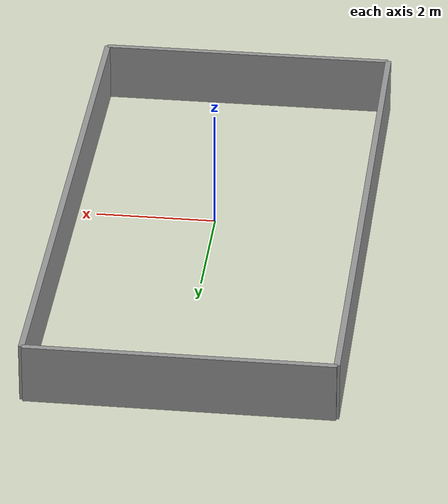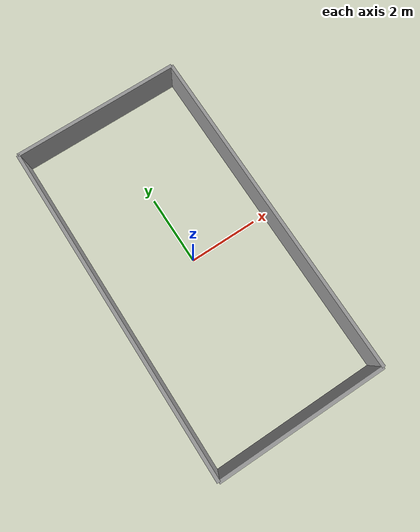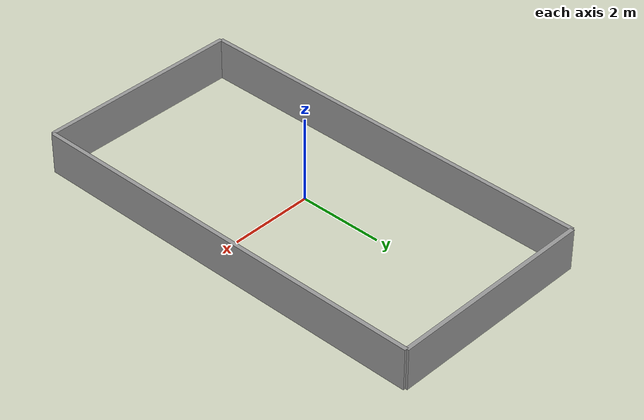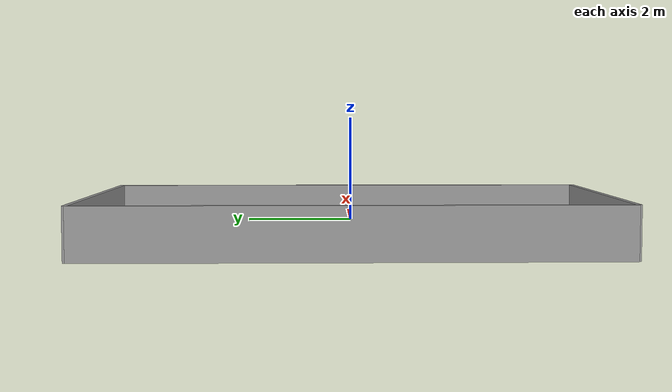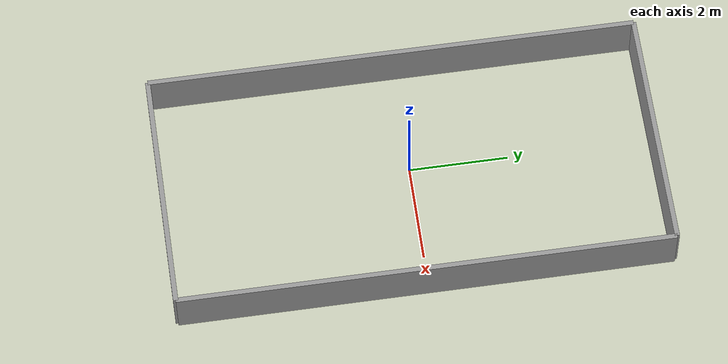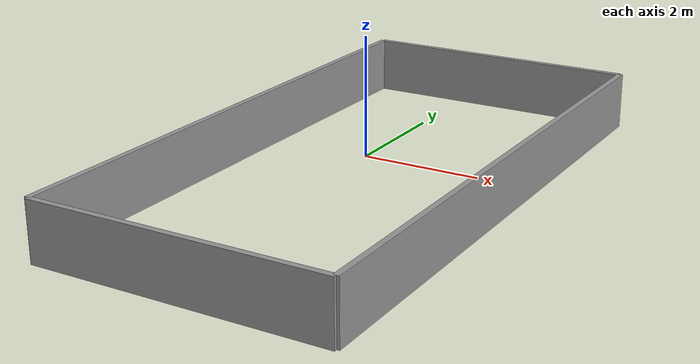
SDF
<?xml version='1.0'?>
<sdf version='1.7'>
  <model name='greenhouse_walls'>
    <link name='link_0'>
      <inertial>
        <mass>1</mass>
        <inertia>
          <ixx>0.166667</ixx>
          <ixy>0</ixy>
          <ixz>0</ixz>
          <iyy>0.166667</iyy>
          <iyz>0</iyz>
          <izz>0.166667</izz>
        </inertia>
        <pose>0 0 0 0 -0 0</pose>
      </inertial>
      <pose>0 -5 0 0 -0 0</pose>
      <gravity>0</gravity>
      <self_collide>0</self_collide>
      <kinematic>1</kinematic>
      <enable_wind>0</enable_wind>
      <visual name='visual'>
        <pose>0 0 0 0 -0 0</pose>
        <geometry>
          <box>
            <size>5 0.1 1</size>
          </box>
        </geometry>
        <material>
          <lighting>1</lighting>
          <script>
            <uri>file://media/materials/scripts/gazebo.material</uri>
            <name>Gazebo/Grey</name>
          </script>
          <shader type='pixel'>
            <normal_map>__default__</normal_map>
          </shader>
          <ambient>0.3 0.3 0.3 1</ambient>
          <diffuse>0.7 0.7 0.7 1</diffuse>
          <specular>0.01 0.01 0.01 1</specular>
          <emissive>0 0 0 1</emissive>
        </material>
        <transparency>0</transparency>
        <cast_shadows>1</cast_shadows>
      </visual>
      <collision name='collision'>
        <laser_retro>0</laser_retro>
        <max_contacts>10</max_contacts>
        <pose>0 0 0 0 -0 0</pose>
        <geometry>
          <box>
            <size>5 0.1 1</size>
          </box>
        </geometry>
      </collision>
    </link>
    <link name='link_0_clone'>
      <inertial>
        <mass>1</mass>
        <inertia>
          <ixx>0.166667</ixx>
          <ixy>0</ixy>
          <ixz>0</ixz>
          <iyy>0.166667</iyy>
          <iyz>0</iyz>
          <izz>0.166667</izz>
        </inertia>
        <pose>0 0 0 0 -0 0</pose>
      </inertial>
      <pose>0 5 0 0 -0 0</pose>
      <gravity>1</gravity>
      <self_collide>0</self_collide>
      <kinematic>1</kinematic>
      <enable_wind>0</enable_wind>
      <visual name='visual'>
        <pose>0 0 0 0 -0 0</pose>
        <geometry>
          <box>
            <size>5 0.1 1</size>
          </box>
        </geometry>
        <material>
          <lighting>1</lighting>
          <script>
            <uri>file://media/materials/scripts/gazebo.material</uri>
            <name>Gazebo/Grey</name>
          </script>
          <shader type='pixel'>
            <normal_map>__default__</normal_map>
          </shader>
          <ambient>0.3 0.3 0.3 1</ambient>
          <diffuse>0.7 0.7 0.7 1</diffuse>
          <specular>0.01 0.01 0.01 1</specular>
          <emissive>0 0 0 1</emissive>
        </material>
        <transparency>0</transparency>
        <cast_shadows>1</cast_shadows>
      </visual>
      <collision name='collision'>
        <laser_retro>0</laser_retro>
        <max_contacts>10</max_contacts>
        <pose>0 0 0 0 -0 0</pose>
        <geometry>
          <box>
            <size>5 0.1 1</size>
          </box>
        </geometry>
      </collision>
    </link>

    <link name='link_1'>
      <inertial>
        <mass>1</mass>
        <inertia>
          <ixx>0.166667</ixx>
          <ixy>0</ixy>
          <ixz>0</ixz>
          <iyy>0.166667</iyy>
          <iyz>0</iyz>
          <izz>0.166667</izz>
        </inertia>
        <pose>0 0 0 0 -0 0</pose>
      </inertial>
      <pose>2.5 0 0 0 -0 1.57</pose>
      <gravity>1</gravity>
      <self_collide>0</self_collide>
      <kinematic>1</kinematic>
      <enable_wind>0</enable_wind>
      <visual name='visual'>
        <pose>0 0 0 0 -0 0</pose>
        <geometry>
          <box>
            <size>10 0.1 1</size>
          </box>
        </geometry>
        <material>
          <lighting>1</lighting>
          <script>
            <uri>file://media/materials/scripts/gazebo.material</uri>
            <name>Gazebo/Grey</name>
          </script>
          <shader type='pixel'>
            <normal_map>__default__</normal_map>
          </shader>
          <ambient>0.3 0.3 0.3 1</ambient>
          <diffuse>0.7 0.7 0.7 1</diffuse>
          <specular>0.01 0.01 0.01 1</specular>
          <emissive>0 0 0 1</emissive>
        </material>
        <transparency>0</transparency>
        <cast_shadows>1</cast_shadows>
      </visual>
      <collision name='collision'>
        <laser_retro>0</laser_retro>
        <max_contacts>10</max_contacts>
        <pose>0 0 0 0 -0 0</pose>
        <geometry>
          <box>
            <size>10 0.1 1</size>
          </box>
        </geometry>
      </collision>
    </link>

    <link name='link_1_clone'>
      <inertial>
        <mass>1</mass>
        <inertia>
          <ixx>0.166667</ixx>
          <ixy>0</ixy>
          <ixz>0</ixz>
          <iyy>0.166667</iyy>
          <iyz>0</iyz>
          <izz>0.166667</izz>
        </inertia>
        <pose>0 0 0 0 -0 0</pose>
      </inertial>
      <pose>-2.5 0 0 0 -0 1.57</pose>
      <gravity>1</gravity>
      <self_collide>0</self_collide>
      <kinematic>1</kinematic>
      <enable_wind>0</enable_wind>
      <visual name='visual'>
        <pose>0 0 0 0 -0 0</pose>
        <geometry>
          <box>
            <size>10 0.1 1</size>
          </box>
        </geometry>
        <material>
          <lighting>1</lighting>
          <script>
            <uri>file://media/materials/scripts/gazebo.material</uri>
            <name>Gazebo/Grey</name>
          </script>
          <shader type='pixel'>
            <normal_map>__default__</normal_map>
          </shader>
          <ambient>0.3 0.3 0.3 1</ambient>
          <diffuse>0.7 0.7 0.7 1</diffuse>
          <specular>0.01 0.01 0.01 1</specular>
          <emissive>0 0 0 1</emissive>
        </material>
        <transparency>0</transparency>
        <cast_shadows>1</cast_shadows>
      </visual>
      <collision name='collision'>
        <laser_retro>0</laser_retro>
        <max_contacts>10</max_contacts>
        <pose>0 0 0 0 -0 0</pose>
        <geometry>
          <box>
            <size>10 0.1 1</size>
          </box>
        </geometry>
      </collision>
    </link>
    <static>True</static>
    <allow_auto_disable>1</allow_auto_disable>
  </model>
</sdf>
